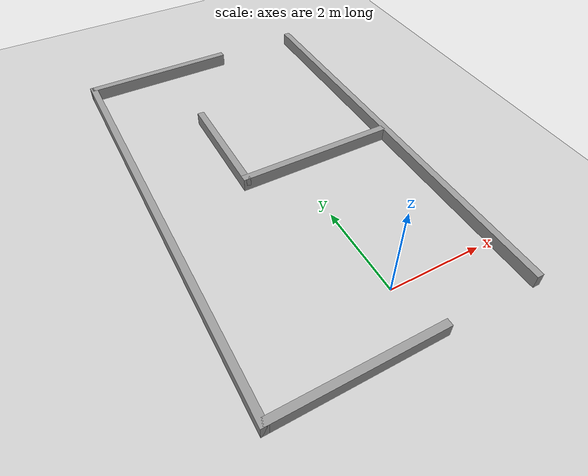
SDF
<sdf version="1.6">
 <world name="default">
  <light name="sun" type="directional">
   <pose>0 0 10 0 -0 0</pose>
   <diffuse>0.8 0.8 0.8 1</diffuse>
   <specular>0.2 0.2 0.2 1</specular>
   <attenuation>
    <range>1000</range>
    <constant>0.9</constant>
    <linear>0.01</linear>
    <quadratic>0.001</quadratic>
   </attenuation>
   <direction>-0.5 0.1 -0.9</direction>
  </light>
  <model name="ground_plane">
   <static>1</static>
   <link name="link">
    <collision name="collision">
     <geometry><plane><normal>0 0 1</normal><size>100 100</size></plane></geometry>
     <surface>
      <contact><collide_bitmask>65535</collide_bitmask></contact>
      <friction><ode><mu>100</mu><mu2>50</mu2></ode></friction>
     </surface>
    </collision>
    <visual name="visual">
     <cast_shadows>0</cast_shadows>
     <geometry><plane><normal>0 0 1</normal><size>100 100</size></plane></geometry>
     <material>
      <script><uri>file://media/materials/scripts/gazebo.material</uri><name>Gazebo/Grey</name></script>
     </material>
    </visual>
   </link>
  </model>
  <gravity>0 0 -9.8</gravity>
  <magnetic_field>6e-06 2.3e-05 -4.2e-05</magnetic_field>
  <atmosphere type="adiabatic"/>
  <physics name="default_physics" default="0" type="ode">
   <max_step_size>0.001</max_step_size>
   <real_time_factor>1</real_time_factor>
   <real_time_update_rate>1000</real_time_update_rate>
  </physics>
  <scene><ambient>0.4 0.4 0.4 1</ambient><background>0.7 0.7 0.7 1</background><shadows>1</shadows></scene>
  <audio><device>default</device></audio>
  <spherical_coordinates>
   <surface_model>EARTH_WGS84</surface_model>
   <latitude_deg>0</latitude_deg>
   <longitude_deg>0</longitude_deg>
   <elevation>0</elevation>
   <heading_deg>0</heading_deg>
  </spherical_coordinates>
  <model name="wpb_mani_scene_1">
   <pose>-0.3855 3.459 0 0 -0 0</pose>
   <link name="Wall_0">
    <collision name="Wall_0_Collision">
     <geometry><box><size>9.25 0.15 0.3</size></box></geometry>
     <pose>0 0 0.15 0 -0 0</pose>
    </collision>
    <visual name="Wall_0_Visual">
     <pose>0 0 0.15 0 -0 0</pose>
     <geometry><box><size>9.25 0.15 0.3</size></box></geometry>
     <material>
      <script><uri>file://media/materials/scripts/gazebo.material</uri><name>Gazebo/Grey</name></script>
      <ambient>1 1 1 1</ambient>
     </material>
     <meta><layer>0</layer></meta>
    </visual>
    <pose>-2.7075 -0.015 0 0 -0 -1.5708</pose>
   </link>
   <link name="Wall_1">
    <collision name="Wall_1_Collision">
     <geometry><box><size>3.5 0.15 0.3</size></box></geometry>
     <pose>0 0 0.15 0 -0 0</pose>
    </collision>
    <visual name="Wall_1_Visual">
     <pose>0 0 0.15 0 -0 0</pose>
     <geometry><box><size>3.5 0.15 0.3</size></box></geometry>
     <material>
      <script><uri>file://media/materials/scripts/gazebo.material</uri><name>Gazebo/Grey</name></script>
      <ambient>1 1 1 1</ambient>
     </material>
     <meta><layer>0</layer></meta>
    </visual>
    <pose>-1.0325 -4.565 0 0 -0 0</pose>
   </link>
   <link name="Wall_10">
    <collision name="Wall_10_Collision">
     <geometry><box><size>2.5 0.15 0.3</size></box></geometry>
     <pose>0 0 0.15 0 -0 0</pose>
    </collision>
    <visual name="Wall_10_Visual">
     <pose>0 0 0.15 0 -0 0</pose>
     <geometry><box><size>2.5 0.15 0.3</size></box></geometry>
     <material>
      <script><uri>file://media/materials/scripts/gazebo.material</uri><name>Gazebo/Grey</name></script>
      <ambient>1 1 1 1</ambient>
     </material>
     <meta><layer>0</layer></meta>
    </visual>
    <pose>-0.7605 1.2 0 0 -0 -1.5708</pose>
   </link>
   <link name="Wall_11">
    <collision name="Wall_11_Collision">
     <geometry><box><size>3.5 0.15 0.3</size></box></geometry>
     <pose>0 0 0.15 0 -0 0</pose>
    </collision>
    <visual name="Wall_11_Visual">
     <pose>0 0 0.15 0 -0 0</pose>
     <geometry><box><size>3.5 0.15 0.3</size></box></geometry>
     <material>
      <script><uri>file://media/materials/scripts/gazebo.material</uri><name>Gazebo/Grey</name></script>
      <ambient>1 1 1 1</ambient>
     </material>
     <meta><layer>0</layer></meta>
    </visual>
    <pose>0.9145 0.025 0 0 -0 0</pose>
   </link>
   <link name="Wall_3">
    <collision name="Wall_3_Collision">
     <geometry><box><size>3.5 0.15 0.3</size></box></geometry>
     <pose>0 0 0.15 0 -0 0</pose>
    </collision>
    <visual name="Wall_3_Visual">
     <pose>0 0 0.15 0 -0 0</pose>
     <geometry><box><size>3.5 0.15 0.3</size></box></geometry>
     <material>
      <script><uri>file://media/materials/scripts/gazebo.material</uri><name>Gazebo/Grey</name></script>
      <ambient>1 1 1 1</ambient>
     </material>
     <meta><layer>0</layer></meta>
    </visual>
    <pose>-1.0325 4.535 0 0 -0 0</pose>
   </link>
   <link name="Wall_5">
    <collision name="Wall_5_Collision">
     <geometry><box><size>9.25 0.15 0.3</size></box></geometry>
     <pose>0 0 0.15 0 -0 0</pose>
    </collision>
    <visual name="Wall_5_Visual">
     <pose>0 0 0.15 0 -0 0</pose>
     <geometry><box><size>9.25 0.15 0.3</size></box></geometry>
     <material>
      <script><uri>file://media/materials/scripts/gazebo.material</uri><name>Gazebo/Grey</name></script>
      <ambient>1 1 1 1</ambient>
     </material>
     <meta><layer>0</layer></meta>
    </visual>
    <pose>2.7075 0.015 0 0 -0 -1.5708</pose>
   </link>
   <static>1</static>
  </model>
 </world>
</sdf>
